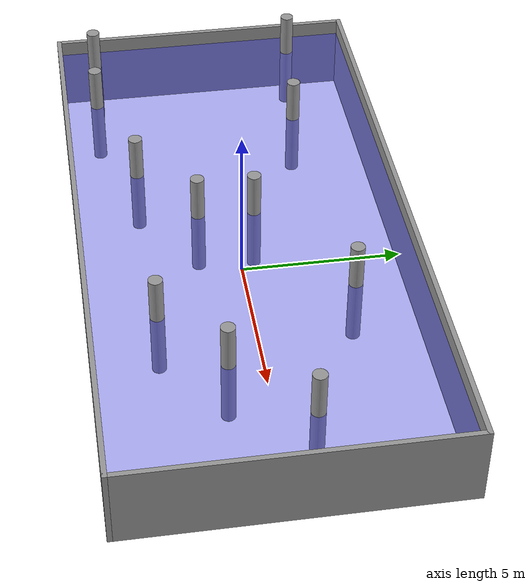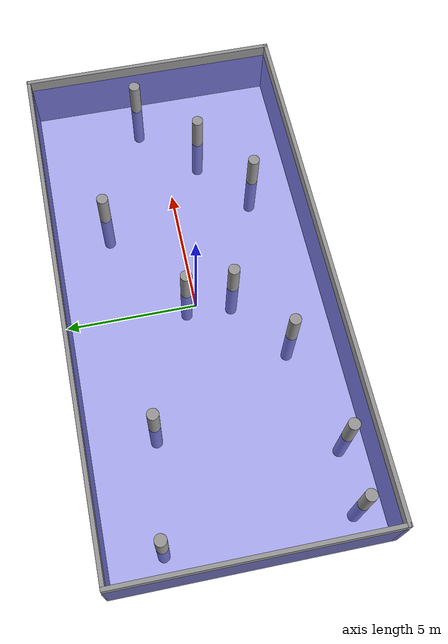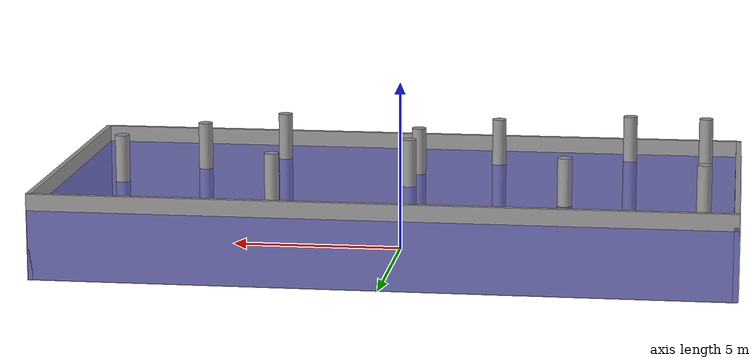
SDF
<sdf version="1.7">
 <world name="competition_world">
  <light name="sun" type="directional">
   <pose>0 0 10 0 -0 0</pose>
   <diffuse>0.8 0.8 0.8 1</diffuse>
   <specular>0.2 0.2 0.2 1</specular>
   <attenuation>
    <range>1000</range>
    <constant>0.9</constant>
    <linear>0.01</linear>
    <quadratic>0.001</quadratic>
   </attenuation>
   <direction>-0.5 0.1 -0.9</direction>
   <spot><inner_angle>0</inner_angle><outer_angle>0</outer_angle><falloff>0</falloff></spot>
  </light>
  <model name="competition_pool">
   <pose>0.024 -0.013042 0 0 -0 0</pose>
   <link name="Wall_16">
    <collision name="Wall_16_Collision">
     <geometry><box><size>10 0.15 2.5</size></box></geometry>
     <pose>0 0 1.25 0 -0 0</pose>
    </collision>
    <visual name="Wall_16_Visual">
     <pose>0 0 1.25 0 -0 0</pose>
     <geometry><box><size>10 0.15 2.5</size></box></geometry>
     <material>
      <script><uri>file://media/materials/scripts/gazebo.material</uri><name>Gazebo/Grey</name></script>
      <ambient>1 1 1 1</ambient>
     </material>
     <meta><layer>0</layer></meta>
    </visual>
    <pose>-9.925 0 0 0 -0 1.5708</pose>
   </link>
   <link name="Wall_17">
    <collision name="Wall_17_Collision">
     <geometry><box><size>20 0.15 2.5</size></box></geometry>
     <pose>0 0 1.25 0 -0 0</pose>
    </collision>
    <visual name="Wall_17_Visual">
     <pose>0 0 1.25 0 -0 0</pose>
     <geometry><box><size>20 0.15 2.5</size></box></geometry>
     <material>
      <script><uri>file://media/materials/scripts/gazebo.material</uri><name>Gazebo/Grey</name></script>
      <ambient>1 1 1 1</ambient>
     </material>
     <meta><layer>0</layer></meta>
    </visual>
    <pose>-0 4.925 0 0 -0 0</pose>
   </link>
   <link name="Wall_18">
    <collision name="Wall_18_Collision">
     <geometry><box><size>10 0.15 2.5</size></box></geometry>
     <pose>0 0 1.25 0 -0 0</pose>
    </collision>
    <visual name="Wall_18_Visual">
     <pose>0 0 1.25 0 -0 0</pose>
     <geometry><box><size>10 0.15 2.5</size></box></geometry>
     <material>
      <script><uri>file://media/materials/scripts/gazebo.material</uri><name>Gazebo/Grey</name></script>
      <ambient>1 1 1 1</ambient>
     </material>
     <meta><layer>0</layer></meta>
    </visual>
    <pose>9.925 0 0 0 -0 -1.5708</pose>
   </link>
   <link name="Wall_19">
    <collision name="Wall_19_Collision">
     <geometry><box><size>20 0.15 2.5</size></box></geometry>
     <pose>0 0 1.25 0 -0 0</pose>
    </collision>
    <visual name="Wall_19_Visual">
     <pose>0 0 1.25 0 -0 0</pose>
     <geometry><box><size>20 0.15 2.5</size></box></geometry>
     <material>
      <script><uri>file://media/materials/scripts/gazebo.material</uri><name>Gazebo/Grey</name></script>
      <ambient>1 1 1 1</ambient>
     </material>
     <meta><layer>0</layer></meta>
    </visual>
    <pose>-0 -4.925 0 0 -0 3.14159</pose>
   </link>
   <static>1</static>
  </model>
  <model name="water">
   <static>1</static>
   <pose>0 0 1.02 -3.14159 -9.3e-05 1.5707</pose>
   <link name="link">
    <visual name="visual">
     <transparency>0.6</transparency>
     <cast_shadows>0</cast_shadows>
     <geometry><box><size>10 20 2</size></box></geometry>
     <material>
      <ambient>0.2 0.2 0.9 1</ambient>
      <diffuse>0.2 0.2 0.9 1</diffuse>
      <specular>0.1 0.1 0.3 1</specular>
      <emissive>0 0 0 1</emissive>
     </material>
    </visual>
   </link>
  </model>
  <physics type="ode">
   <max_step_size>0.001</max_step_size>
   <real_time_update_rate>1000</real_time_update_rate>
   <real_time_factor>1</real_time_factor>
  </physics>
  <gravity>0 0 0</gravity>
  <magnetic_field>6e-06 2.3e-05 -4.2e-05</magnetic_field>
  <atmosphere type="adiabatic"/>
  <scene><ambient>0.4 0.4 0.4 1</ambient><background>0.7 0.7 0.7 1</background><shadows>1</shadows></scene>
  <spherical_coordinates>
   <surface_model>EARTH_WGS84</surface_model>
   <latitude_deg>0</latitude_deg>
   <longitude_deg>0</longitude_deg>
   <elevation>0</elevation>
   <heading_deg>0</heading_deg>
  </spherical_coordinates>
  <model name="unit_cylinder">
   <pose>-5.01466 2.42882 1.7 0 -0 0</pose>
   <link name="link">
    <inertial>
     <mass>1</mass>
     <inertia><ixx>0.145833</ixx><ixy>0</ixy><ixz>0</ixz><iyy>0.145833</iyy><iyz>0</iyz><izz>0.125</izz></inertia>
    </inertial>
    <collision name="collision">
     <geometry><cylinder><radius>0.21</radius><length>3.4224</length></cylinder></geometry>
    </collision>
    <visual name="visual">
     <geometry><cylinder><radius>0.21</radius><length>3.4224</length></cylinder></geometry>
     <material>
      <script><name>Gazebo/Grey</name><uri>file://media/materials/scripts/gazebo.material</uri></script>
     </material>
    </visual>
   </link>
  </model>
  <model name="unit_cylinder_clone">
   <pose>-2.66861 -2.94037 1.7 0 -0 0</pose>
   <link name="link">
    <inertial>
     <mass>1</mass>
     <inertia><ixx>0.145833</ixx><ixy>0</ixy><ixz>0</ixz><iyy>0.145833</iyy><iyz>0</iyz><izz>0.125</izz></inertia>
    </inertial>
    <collision name="collision">
     <geometry><cylinder><radius>0.21</radius><length>3.4224</length></cylinder></geometry>
    </collision>
    <visual name="visual">
     <geometry><cylinder><radius>0.21</radius><length>3.4224</length></cylinder></geometry>
     <material>
      <script><name>Gazebo/Grey</name><uri>file://media/materials/scripts/gazebo.material</uri></script>
     </material>
    </visual>
   </link>
  </model>
  <model name="unit_cylinder_clone_0">
   <pose>-0.40162 -1.29994 1.7 0 -0 0</pose>
   <link name="link">
    <inertial>
     <mass>1</mass>
     <inertia><ixx>0.145833</ixx><ixy>0</ixy><ixz>0</ixz><iyy>0.145833</iyy><iyz>0</iyz><izz>0.125</izz></inertia>
    </inertial>
    <collision name="collision">
     <geometry><cylinder><radius>0.21</radius><length>3.4224</length></cylinder></geometry>
    </collision>
    <visual name="visual">
     <geometry><cylinder><radius>0.21</radius><length>3.4224</length></cylinder></geometry>
     <material>
      <script><name>Gazebo/Grey</name><uri>file://media/materials/scripts/gazebo.material</uri></script>
     </material>
    </visual>
   </link>
  </model>
  <model name="unit_cylinder_clone_1">
   <pose>3.35586 2.81305 1.7 0 -0 0</pose>
   <link name="link">
    <inertial>
     <mass>1</mass>
     <inertia><ixx>0.145833</ixx><ixy>0</ixy><ixz>0</ixz><iyy>0.145833</iyy><iyz>0</iyz><izz>0.125</izz></inertia>
    </inertial>
    <collision name="collision">
     <geometry><cylinder><radius>0.21</radius><length>3.4224</length></cylinder></geometry>
    </collision>
    <visual name="visual">
     <geometry><cylinder><radius>0.21</radius><length>3.4224</length></cylinder></geometry>
     <material>
      <script><name>Gazebo/Grey</name><uri>file://media/materials/scripts/gazebo.material</uri></script>
     </material>
    </visual>
   </link>
  </model>
  <model name="unit_cylinder_clone_2">
   <pose>3.93087 -3.00402 1.7 0 -0 0</pose>
   <link name="link">
    <inertial>
     <mass>1</mass>
     <inertia><ixx>0.145833</ixx><ixy>0</ixy><ixz>0</ixz><iyy>0.145833</iyy><iyz>0</iyz><izz>0.125</izz></inertia>
    </inertial>
    <collision name="collision">
     <geometry><cylinder><radius>0.21</radius><length>3.4224</length></cylinder></geometry>
    </collision>
    <visual name="visual">
     <geometry><cylinder><radius>0.21</radius><length>3.4224</length></cylinder></geometry>
     <material>
      <script><name>Gazebo/Grey</name><uri>file://media/materials/scripts/gazebo.material</uri></script>
     </material>
    </visual>
   </link>
  </model>
  <model name="unit_cylinder_clone_3">
   <pose>6.08758 -1.28691 1.7 0 -0 0</pose>
   <link name="link">
    <inertial>
     <mass>1</mass>
     <inertia><ixx>0.145833</ixx><ixy>0</ixy><ixz>0</ixz><iyy>0.145833</iyy><iyz>0</iyz><izz>0.125</izz></inertia>
    </inertial>
    <collision name="collision">
     <geometry><cylinder><radius>0.21</radius><length>3.4224</length></cylinder></geometry>
    </collision>
    <visual name="visual">
     <geometry><cylinder><radius>0.21</radius><length>3.4224</length></cylinder></geometry>
     <material>
      <script><name>Gazebo/Grey</name><uri>file://media/materials/scripts/gazebo.material</uri></script>
     </material>
    </visual>
   </link>
  </model>
  <model name="unit_cylinder_clone_4">
   <pose>8.17269 0.811698 1.7 0 -0 0</pose>
   <link name="link">
    <inertial>
     <mass>1</mass>
     <inertia><ixx>0.145833</ixx><ixy>0</ixy><ixz>0</ixz><iyy>0.145833</iyy><iyz>0</iyz><izz>0.125</izz></inertia>
    </inertial>
    <collision name="collision">
     <geometry><cylinder><radius>0.21</radius><length>3.4224</length></cylinder></geometry>
    </collision>
    <visual name="visual">
     <geometry><cylinder><radius>0.21</radius><length>3.4224</length></cylinder></geometry>
     <material>
      <script><name>Gazebo/Grey</name><uri>file://media/materials/scripts/gazebo.material</uri></script>
     </material>
    </visual>
   </link>
  </model>
  <model name="unit_cylinder_clone_5">
   <pose>-0.319834 0.410442 1.7 0 -0 0</pose>
   <link name="link">
    <inertial>
     <mass>1</mass>
     <inertia><ixx>0.145833</ixx><ixy>0</ixy><ixz>0</ixz><iyy>0.145833</iyy><iyz>0</iyz><izz>0.125</izz></inertia>
    </inertial>
    <collision name="collision">
     <geometry><cylinder><radius>0.21</radius><length>3.4224</length></cylinder></geometry>
    </collision>
    <visual name="visual">
     <geometry><cylinder><radius>0.21</radius><length>3.4224</length></cylinder></geometry>
     <material>
      <script><name>Gazebo/Grey</name><uri>file://media/materials/scripts/gazebo.material</uri></script>
     </material>
    </visual>
   </link>
  </model>
  <model name="unit_cylinder_clone_clone">
   <pose>-6.60534 -3.89387 1.7 0 -0 0</pose>
   <link name="link">
    <inertial>
     <mass>1</mass>
     <inertia><ixx>0.145833</ixx><ixy>0</ixy><ixz>0</ixz><iyy>0.145833</iyy><iyz>0</iyz><izz>0.125</izz></inertia>
    </inertial>
    <collision name="collision">
     <geometry><cylinder><radius>0.21</radius><length>3.4224</length></cylinder></geometry>
    </collision>
    <visual name="visual">
     <geometry><cylinder><radius>0.21</radius><length>3.4224</length></cylinder></geometry>
     <material>
      <script><name>Gazebo/Grey</name><uri>file://media/materials/scripts/gazebo.material</uri></script>
     </material>
    </visual>
   </link>
  </model>
  <model name="unit_cylinder_clone_clone_0">
   <pose>-8.96459 2.89014 1.7 0 -0 0</pose>
   <link name="link">
    <inertial>
     <mass>1</mass>
     <inertia><ixx>0.145833</ixx><ixy>0</ixy><ixz>0</ixz><iyy>0.145833</iyy><iyz>0</iyz><izz>0.125</izz></inertia>
    </inertial>
    <collision name="collision">
     <geometry><cylinder><radius>0.21</radius><length>3.4224</length></cylinder></geometry>
    </collision>
    <visual name="visual">
     <geometry><cylinder><radius>0.21</radius><length>3.4224</length></cylinder></geometry>
     <material>
      <script><name>Gazebo/Grey</name><uri>file://media/materials/scripts/gazebo.material</uri></script>
     </material>
    </visual>
   </link>
  </model>
  <model name="unit_cylinder_clone_clone_1">
   <pose>-8.90841 -3.78862 1.7 0 -0 0</pose>
   <link name="link">
    <inertial>
     <mass>1</mass>
     <inertia><ixx>0.145833</ixx><ixy>0</ixy><ixz>0</ixz><iyy>0.145833</iyy><iyz>0</iyz><izz>0.125</izz></inertia>
    </inertial>
    <collision name="collision">
     <geometry><cylinder><radius>0.21</radius><length>3.4224</length></cylinder></geometry>
    </collision>
    <visual name="visual">
     <geometry><cylinder><radius>0.21</radius><length>3.4224</length></cylinder></geometry>
     <material>
      <script><name>Gazebo/Grey</name><uri>file://media/materials/scripts/gazebo.material</uri></script>
     </material>
    </visual>
   </link>
  </model>
 </world>
</sdf>
